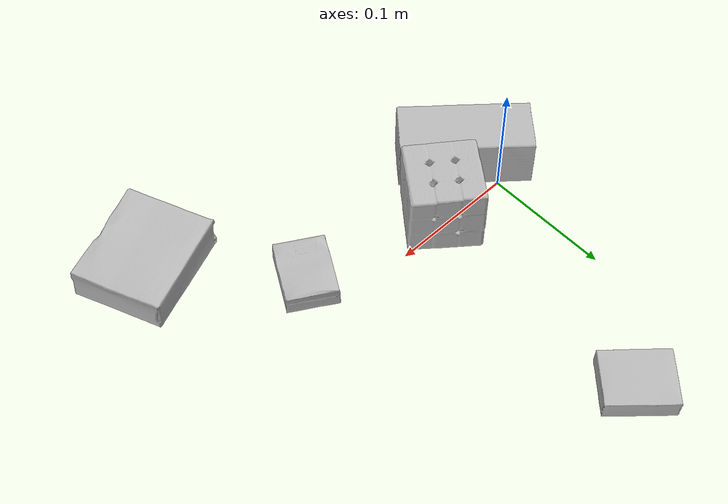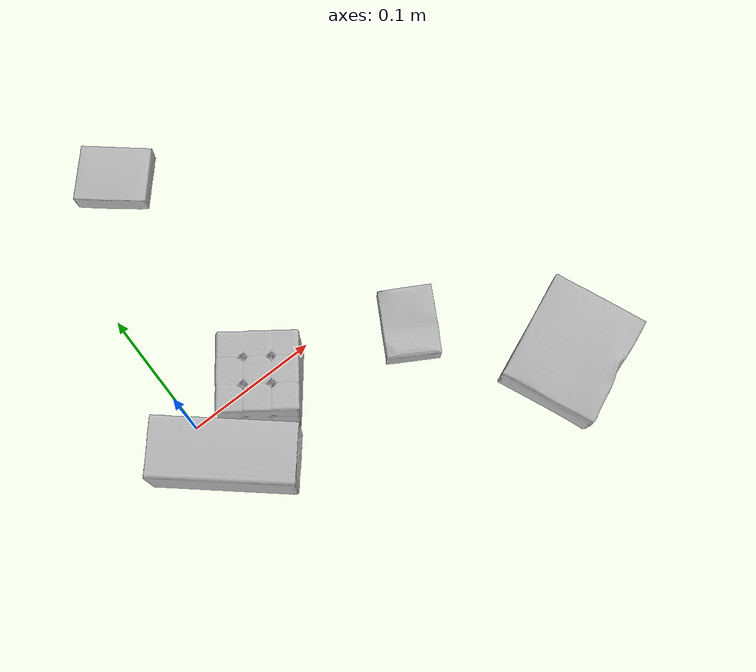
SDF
<sdf version="1.4">
  <world name="default">
    <light name="light1" type="point">
      <pose>0 0 1 0 0 0</pose>
      <diffuse>3 3 3 1</diffuse>
      <specular>3 3 3 1</specular>
    </light>
    <light name="light2" type="point">
      <pose>0 0.5 2 0 0 0</pose>
      <diffuse>1 1 1 1</diffuse>
      <specular>1 1 1 1</specular>
    </light>
    <light name="light3" type="point">
      <pose>0 0.5 2 0 0 0</pose>
      <diffuse>3 3 3 1</diffuse>
      <specular>3 3 3 1</specular>
    </light>
    <scene>
      <ambient>0.7 0.7 0.7</ambient>
    </scene>
    <model name="box1">
      <link name="link_box1">
        <collision name="default">
          <geometry>
            <mesh>
              <uri>model://rubiks_cube/collision_meshes/collision.obj</uri>
              <scale>1.0 1.0 1.0</scale>
            </mesh>
          </geometry>
          <surface>
            <friction>
              <ode>
                <mu>0.5</mu>
                <mu2>0.5</mu2>
              </ode>
            </friction>
          <contact>
        <ode>
            <max_vel>0</max_vel>
            <min_depth>0.0001</min_depth>
            <kp>1e8</kp>
        </ode>
    </contact></surface>
        </collision>
        <visual name="default">
          <geometry>
            <mesh>
              <uri>model://rubiks_cube/visual_meshes/visual.dae</uri>
              <scale>1.0 1.0 1.0</scale>
            </mesh>
          </geometry>
        </visual>
        <inertial>
          <mass>0.16542086005210876</mass>
          <pose>2.6721041649580002e-05 5.256967051536776e-05 -7.264316536748083e-06 -0.054673137900176624 -0.09813866632394339 -0.03445580911338559</pose>
          <inertia>
            <ixx>9.140613e-05</ixx>
            <iyy>9.097988e-05</iyy>
            <izz>9.216359e-05</izz>
            <ixy>0</ixy>
            <ixz>0</ixz>
            <iyz>0</iyz>
          </inertia>
        </inertial>
      </link>
      <pose>0.05551295354962349 -0.006819314323365688 0.028679003939032555 2.248762611769435e-09 1.6718009841646116e-08 -0.6475320233103107</pose>
    </model>
    <model name="box2">
      <link name="link_box2">
        <collision name="default">
          <geometry>
            <mesh>
              <uri>model://cracker_box/collision_meshes/collision.obj</uri>
              <scale>0.25 0.25 0.25</scale>
            </mesh>
          </geometry>
          <surface>
            <friction>
              <ode>
                <mu>0.5</mu>
                <mu2>0.5</mu2>
              </ode>
            </friction>
          <contact>
        <ode>
            <max_vel>0</max_vel>
            <min_depth>0.0001</min_depth>
            <kp>1e8</kp>
        </ode>
    </contact></surface>
        </collision>
        <visual name="default">
          <geometry>
            <mesh>
              <uri>model://cracker_box/visual_meshes/visual.dae</uri>
              <scale>0.25 0.25 0.25</scale>
            </mesh>
          </geometry>
        </visual>
        <inertial>
          <mass>0.04381135478615761</mass>
          <pose>0.00023660462466068566 6.358561222441494e-05 -0.0004257383698131889 -0.00031620747829542317 -0.011106489600678707 0.002546794302661479</pose>
          <inertia>
            <ixx>6.9647826e-06</ixx>
            <iyy>1.1500225e-05</iyy>
            <izz>1.6411877e-05</izz>
            <ixy>0</ixy>
            <ixz>0</ixz>
            <iyz>0</iyz>
          </inertia>
        </inertial>
      </link>
      <pose>0.16773007810115814 -0.03533722832798958 0.009096026420593262 -0.014051296085604197 -0.005016237751373906 1.0370203154440205</pose>
    </model>
    <model name="box3">
      <link name="link_box3">
        <collision name="default">
          <geometry>
            <mesh>
              <uri>model://gelatin_box/collision_meshes/collision.obj</uri>
              <scale>1.0 1.0 1.0</scale>
            </mesh>
          </geometry>
          <surface>
            <friction>
              <ode>
                <mu>0.5</mu>
                <mu2>0.5</mu2>
              </ode>
            </friction>
          <contact>
        <ode>
            <max_vel>0</max_vel>
            <min_depth>0.0001</min_depth>
            <kp>1e8</kp>
        </ode>
    </contact></surface>
        </collision>
        <visual name="default">
          <geometry>
            <mesh>
              <uri>model://gelatin_box/visual_meshes/visual.dae</uri>
              <scale>1.0 1.0 1.0</scale>
            </mesh>
          </geometry>
        </visual>
        <inertial>
          <mass>0.23367169499397278</mass>
          <pose>0.0004319618456065655 0.00011156871914863586 -0.0003640321083366871 -0.0010503719733775277 -0.004755817758083372 0.016440561333906818</pose>
          <inertia>
            <ixx>0.00016495313</ixx>
            <iyy>0.00011782518</iyy>
            <izz>0.00025109548</izz>
            <ixy>0</ixy>
            <ixz>0</ixz>
            <iyz>0</iyz>
          </inertia>
        </inertial>
      </link>
      <pose>0.2450900375843048 -0.1250685304403305 0.015168310143053532 0.00559669749504592 -0.007303671566201339 -1.1980319679373281</pose>
    </model>
    <model name="box4">
      <link name="link_box4">
        <collision name="default">
          <geometry>
            <mesh>
              <uri>model://wood_block/collision_meshes/collision.obj</uri>
              <scale>0.5 0.5 0.5</scale>
            </mesh>
          </geometry>
          <surface>
            <friction>
              <ode>
                <mu>0.5</mu>
                <mu2>0.5</mu2>
              </ode>
            </friction>
          <contact>
        <ode>
            <max_vel>0</max_vel>
            <min_depth>0.0001</min_depth>
            <kp>1e8</kp>
        </ode>
    </contact></surface>
        </collision>
        <visual name="default">
          <geometry>
            <mesh>
              <uri>model://wood_block/visual_meshes/visual.dae</uri>
              <scale>0.5 0.5 0.5</scale>
            </mesh>
          </geometry>
        </visual>
        <inertial>
          <mass>0.20833587646484375</mass>
          <pose>-2.9066577553749084e-06 -0.000285404734313488 0.00013204291462898254 -0.05220975529367638 -0.0051926946165042134 -0.0068613779519224715</pose>
          <inertia>
            <ixx>6.9696216e-05</ixx>
            <iyy>0.0002201704</iyy>
            <izz>0.00021934687</izz>
            <ixy>0</ixy>
            <ixz>0</ixz>
            <iyz>0</iyz>
          </inertia>
        </inertial>
      </link>
      <pose>0.004854499362409115 -0.033319972455501556 0.022527484223246574 -0.01584724103288168 -0.000401493746874138 -0.7127449991231971</pose>
    </model>
    <model name="box5">
      <link name="link_box5">
        <collision name="default">
          <geometry>
            <mesh>
              <uri>model://pudding_box/collision_meshes/collision.obj</uri>
              <scale>0.5 0.5 0.5</scale>
            </mesh>
          </geometry>
          <surface>
            <friction>
              <ode>
                <mu>0.5</mu>
                <mu2>0.5</mu2>
              </ode>
            </friction>
          <contact>
        <ode>
            <max_vel>0</max_vel>
            <min_depth>0.0001</min_depth>
            <kp>1e8</kp>
        </ode>
    </contact></surface>
        </collision>
        <visual name="default">
          <geometry>
            <mesh>
              <uri>model://pudding_box/visual_meshes/visual.dae</uri>
              <scale>0.5 0.5 0.5</scale>
            </mesh>
          </geometry>
        </visual>
        <inertial>
          <mass>0.032720133662223816</mass>
          <pose>0.00024474109522998333 0.0004033942532259971 -0.0002594413817860186 0.005213102275410761 -0.0066037963999523224 0.020079827026921356</pose>
          <inertia>
            <ixx>9.2471055e-06</ixx>
            <iyy>6.221519e-06</iyy>
            <izz>1.3655769e-05</izz>
            <ixy>0</ixy>
            <ixz>0</ixz>
            <iyz>0</iyz>
          </inertia>
        </inertial>
      </link>
      <pose>0.06388681381940842 0.19291099905967712 0.009862903505563736 0.022348180182149586 -0.01139205742308238 -2.294913148805741</pose>
    </model>
  <physics type="ode">
      <max_contacts>50</max_contacts>
      <ode>
        <solver>
          <type>quick</type>
          <iters>75</iters>
        </solver>
        <constraints>
          <contact_max_correcting_vel>0</contact_max_correcting_vel>
          <contact_surface_layer>0</contact_surface_layer>
        </constraints>
      </ode>
    </physics></world>
</sdf>
